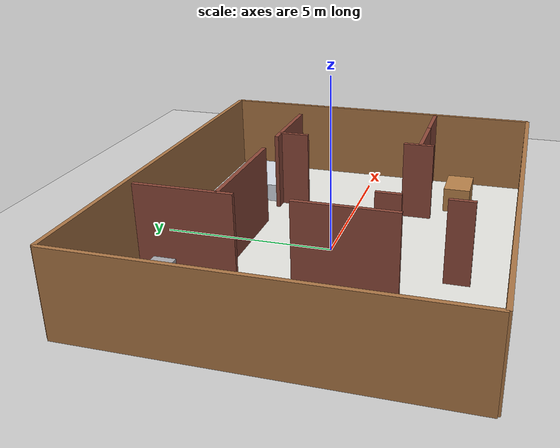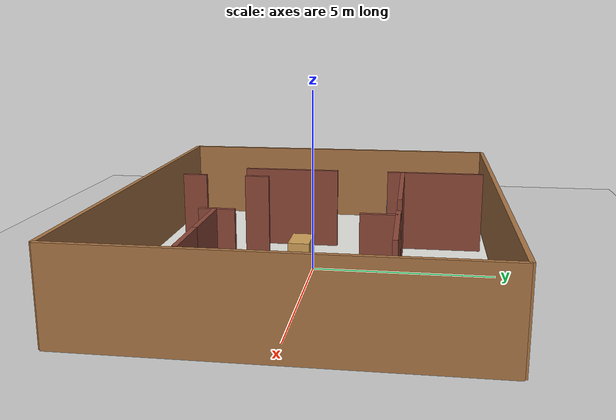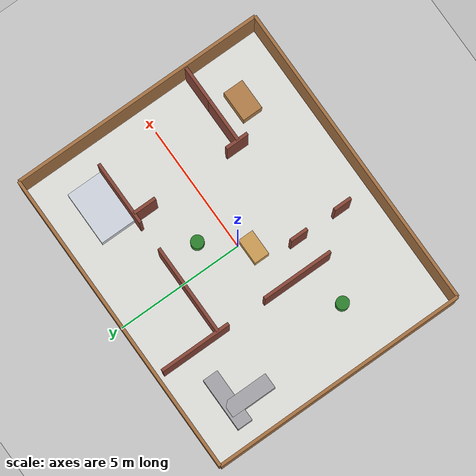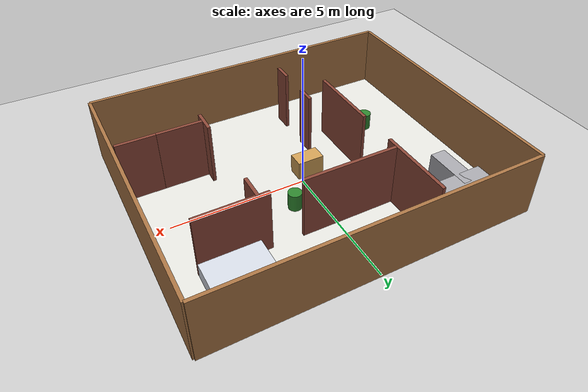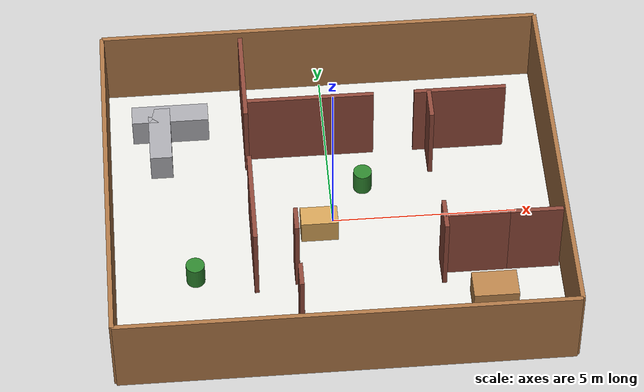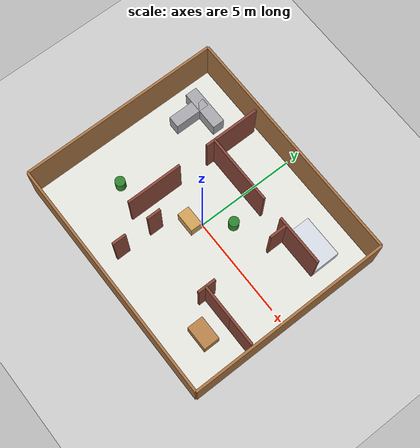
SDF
<?xml version="1.0" ?>
<sdf version="1.6">
  <world name="house_scan_world">
    <gravity>0 0 -9.8</gravity>
    <magnetic_field>6e-06 2.3e-05 -4.2e-05</magnetic_field>
    <atmosphere type="adiabatic"/>

    <include>
      <uri>model://sun</uri>
    </include>

    <include>
      <uri>model://ground_plane</uri>
    </include>

    <scene>
      <ambient>0.75 0.75 0.75 1</ambient>
      <background>0.92 0.94 0.97 1</background>
      <shadows>true</shadows>
    </scene>

    <physics name="default_physics" default="1" type="ode">
      <max_step_size>0.001</max_step_size>
      <real_time_update_rate>1000</real_time_update_rate>
    </physics>

    <gui fullscreen="0">
      <camera name="user_camera">
        <pose>-0.8 -0.6 18 0 1.57 1.57</pose>
        <view_controller>orbit</view_controller>
        <projection_type>perspective</projection_type>
      </camera>
    </gui>

    <model name="house_layout">
      <static>true</static>
      <pose>0 0 0 0 0 0</pose>

      <link name="floor">
        <pose>0 0 0.025 0 0 0</pose>
        <collision name="floor_collision">
          <geometry>
            <box>
              <size>12 10 0.05</size>
            </box>
          </geometry>
        </collision>
        <visual name="floor_visual">
          <geometry>
            <box>
              <size>12 10 0.05</size>
            </box>
          </geometry>
          <material>
            <ambient>0.87 0.87 0.84 1</ambient>
            <diffuse>0.90 0.90 0.88 1</diffuse>
          </material>
        </visual>
      </link>

      <link name="wall_south">
        <pose>0 -5 1.2 0 0 0</pose>
        <collision name="collision">
          <geometry>
            <box><size>12 0.12 2.4</size></box>
          </geometry>
        </collision>
        <visual name="visual">
          <geometry>
            <box><size>12 0.12 2.4</size></box>
          </geometry>
          <material>
            <ambient>0.58 0.38 0.21 1</ambient>
            <diffuse>0.67 0.46 0.27 1</diffuse>
          </material>
        </visual>
      </link>

      <link name="wall_north">
        <pose>0 5 1.2 0 0 0</pose>
        <collision name="collision">
          <geometry>
            <box><size>12 0.12 2.4</size></box>
          </geometry>
        </collision>
        <visual name="visual">
          <geometry>
            <box><size>12 0.12 2.4</size></box>
          </geometry>
          <material>
            <ambient>0.58 0.38 0.21 1</ambient>
            <diffuse>0.67 0.46 0.27 1</diffuse>
          </material>
        </visual>
      </link>

      <link name="wall_west">
        <pose>-6 0 1.2 0 0 0</pose>
        <collision name="collision">
          <geometry>
            <box><size>0.12 10 2.4</size></box>
          </geometry>
        </collision>
        <visual name="visual">
          <geometry>
            <box><size>0.12 10 2.4</size></box>
          </geometry>
          <material>
            <ambient>0.58 0.38 0.21 1</ambient>
            <diffuse>0.67 0.46 0.27 1</diffuse>
          </material>
        </visual>
      </link>

      <link name="wall_east">
        <pose>6 0 1.2 0 0 0</pose>
        <collision name="collision">
          <geometry>
            <box><size>0.12 10 2.4</size></box>
          </geometry>
        </collision>
        <visual name="visual">
          <geometry>
            <box><size>0.12 10 2.4</size></box>
          </geometry>
          <material>
            <ambient>0.58 0.38 0.21 1</ambient>
            <diffuse>0.67 0.46 0.27 1</diffuse>
          </material>
        </visual>
      </link>

      <link name="room_divider_west_top">
        <pose>-2.2 3.35 1.2 0 0 0</pose>
        <collision name="collision">
          <geometry>
            <box><size>0.12 2.8 2.4</size></box>
          </geometry>
        </collision>
        <visual name="visual">
          <geometry>
            <box><size>0.12 2.8 2.4</size></box>
          </geometry>
          <material>
            <ambient>0.44 0.22 0.18 1</ambient>
            <diffuse>0.55 0.28 0.22 1</diffuse>
          </material>
        </visual>
      </link>

      <link name="room_divider_west_bottom">
        <pose>-2.2 -0.95 1.2 0 0 0</pose>
        <collision name="collision">
          <geometry>
            <box><size>0.12 2.8 2.4</size></box>
          </geometry>
        </collision>
        <visual name="visual">
          <geometry>
            <box><size>0.12 2.8 2.4</size></box>
          </geometry>
          <material>
            <ambient>0.44 0.22 0.18 1</ambient>
            <diffuse>0.55 0.28 0.22 1</diffuse>
          </material>
        </visual>
      </link>

      <link name="room_divider_top_left">
        <pose>-0.45 2.4 1.2 0 0 0</pose>
        <collision name="collision">
          <geometry>
            <box><size>3.5 0.12 2.4</size></box>
          </geometry>
        </collision>
        <visual name="visual">
          <geometry>
            <box><size>3.5 0.12 2.4</size></box>
          </geometry>
          <material>
            <ambient>0.44 0.22 0.18 1</ambient>
            <diffuse>0.55 0.28 0.22 1</diffuse>
          </material>
        </visual>
      </link>

      <link name="room_divider_top_right">
        <pose>3.65 2.4 1.2 0 0 0</pose>
        <collision name="collision">
          <geometry>
            <box><size>2.5 0.12 2.4</size></box>
          </geometry>
        </collision>
        <visual name="visual">
          <geometry>
            <box><size>2.5 0.12 2.4</size></box>
          </geometry>
          <material>
            <ambient>0.44 0.22 0.18 1</ambient>
            <diffuse>0.55 0.28 0.22 1</diffuse>
          </material>
        </visual>
      </link>

      <link name="room_divider_east_vertical_top">
        <pose>2.8 1.95 1.2 0 0 0</pose>
        <collision name="collision">
          <geometry>
            <box><size>0.12 0.9 2.4</size></box>
          </geometry>
        </collision>
        <visual name="visual">
          <geometry>
            <box><size>0.12 0.9 2.4</size></box>
          </geometry>
          <material>
            <ambient>0.44 0.22 0.18 1</ambient>
            <diffuse>0.55 0.28 0.22 1</diffuse>
          </material>
        </visual>
      </link>

      <link name="room_divider_east_vertical_bottom">
        <pose>2.8 -1.95 1.2 0 0 0</pose>
        <collision name="collision">
          <geometry>
            <box><size>0.12 0.9 2.4</size></box>
          </geometry>
        </collision>
        <visual name="visual">
          <geometry>
            <box><size>0.12 0.9 2.4</size></box>
          </geometry>
          <material>
            <ambient>0.44 0.22 0.18 1</ambient>
            <diffuse>0.55 0.28 0.22 1</diffuse>
          </material>
        </visual>
      </link>

      <link name="bottom_right_room_top_left">
        <pose>3.65 -2.0 1.2 0 0 0</pose>
        <collision name="collision">
          <geometry>
            <box><size>1.7 0.12 2.4</size></box>
          </geometry>
        </collision>
        <visual name="visual">
          <geometry>
            <box><size>1.7 0.12 2.4</size></box>
          </geometry>
          <material>
            <ambient>0.44 0.22 0.18 1</ambient>
            <diffuse>0.55 0.28 0.22 1</diffuse>
          </material>
        </visual>
      </link>

      <link name="bottom_right_room_top_right">
        <pose>5.2 -2.0 1.2 0 0 0</pose>
        <collision name="collision">
          <geometry>
            <box><size>1.4 0.12 2.4</size></box>
          </geometry>
        </collision>
        <visual name="visual">
          <geometry>
            <box><size>1.4 0.12 2.4</size></box>
          </geometry>
          <material>
            <ambient>0.44 0.22 0.18 1</ambient>
            <diffuse>0.55 0.28 0.22 1</diffuse>
          </material>
        </visual>
      </link>

      <link name="entry_partition_top">
        <pose>-1.1 -3.65 1.2 0 0 0</pose>
        <collision name="collision">
          <geometry>
            <box><size>0.12 0.7 2.4</size></box>
          </geometry>
        </collision>
        <visual name="visual">
          <geometry>
            <box><size>0.12 0.7 2.4</size></box>
          </geometry>
          <material>
            <ambient>0.44 0.22 0.18 1</ambient>
            <diffuse>0.55 0.28 0.22 1</diffuse>
          </material>
        </visual>
      </link>

      <link name="entry_partition_bottom">
        <pose>-1.1 -1.8 1.2 0 0 0</pose>
        <collision name="collision">
          <geometry>
            <box><size>0.12 0.7 2.4</size></box>
          </geometry>
        </collision>
        <visual name="visual">
          <geometry>
            <box><size>0.12 0.7 2.4</size></box>
          </geometry>
          <material>
            <ambient>0.44 0.22 0.18 1</ambient>
            <diffuse>0.55 0.28 0.22 1</diffuse>
          </material>
        </visual>
      </link>

      <link name="table_center">
        <pose>-0.4 -0.4 0.38 0 0 0</pose>
        <collision name="collision">
          <geometry>
            <box><size>1.0 0.6 0.76</size></box>
          </geometry>
        </collision>
        <visual name="visual">
          <geometry>
            <box><size>1.0 0.6 0.76</size></box>
          </geometry>
          <material>
            <ambient>0.72 0.54 0.29 1</ambient>
            <diffuse>0.82 0.63 0.34 1</diffuse>
          </material>
        </visual>
      </link>

      <link name="bedroom_bed">
        <pose>3.85 3.10 0.30 0 0 0</pose>
        <collision name="collision">
          <geometry>
            <box><size>2.1 1.5 0.6</size></box>
          </geometry>
        </collision>
        <visual name="visual">
          <geometry>
            <box><size>2.1 1.5 0.6</size></box>
          </geometry>
          <material>
            <ambient>0.77 0.79 0.83 1</ambient>
            <diffuse>0.84 0.86 0.90 1</diffuse>
          </material>
        </visual>
      </link>

      <link name="kitchen_counter_north">
        <pose>-4.25 3.45 0.45 0 0 0</pose>
        <collision name="collision">
          <geometry>
            <box><size>2.1 0.6 0.9</size></box>
          </geometry>
        </collision>
        <visual name="visual">
          <geometry>
            <box><size>2.1 0.6 0.9</size></box>
          </geometry>
          <material>
            <ambient>0.55 0.55 0.56 1</ambient>
            <diffuse>0.66 0.66 0.68 1</diffuse>
          </material>
        </visual>
      </link>

      <link name="kitchen_counter_side">
        <pose>-4.55 2.75 0.45 0 0 1.57</pose>
        <collision name="collision">
          <geometry>
            <box><size>1.8 0.6 0.9</size></box>
          </geometry>
        </collision>
        <visual name="visual">
          <geometry>
            <box><size>1.8 0.6 0.9</size></box>
          </geometry>
          <material>
            <ambient>0.55 0.55 0.56 1</ambient>
            <diffuse>0.66 0.66 0.68 1</diffuse>
          </material>
        </visual>
      </link>

      <link name="bottom_right_table">
        <pose>4.05 -3.10 0.4 0 0 0</pose>
        <collision name="collision">
          <geometry>
            <box><size>1.2 0.8 0.8</size></box>
          </geometry>
        </collision>
        <visual name="visual">
          <geometry>
            <box><size>1.2 0.8 0.8</size></box>
          </geometry>
          <material>
            <ambient>0.60 0.43 0.24 1</ambient>
            <diffuse>0.72 0.51 0.29 1</diffuse>
          </material>
        </visual>
      </link>

      <link name="plant_top_hall">
        <pose>0.9 1.1 0.35 0 0 0</pose>
        <collision name="collision">
          <geometry>
            <cylinder><radius>0.25</radius><length>0.7</length></cylinder>
          </geometry>
        </collision>
        <visual name="visual">
          <geometry>
            <cylinder><radius>0.25</radius><length>0.7</length></cylinder>
          </geometry>
          <material>
            <ambient>0.14 0.38 0.14 1</ambient>
            <diffuse>0.18 0.52 0.18 1</diffuse>
          </material>
        </visual>
      </link>

      <link name="plant_left_hall">
        <pose>-3.8 -1.8 0.35 0 0 0</pose>
        <collision name="collision">
          <geometry>
            <cylinder><radius>0.25</radius><length>0.7</length></cylinder>
          </geometry>
        </collision>
        <visual name="visual">
          <geometry>
            <cylinder><radius>0.25</radius><length>0.7</length></cylinder>
          </geometry>
          <material>
            <ambient>0.14 0.38 0.14 1</ambient>
            <diffuse>0.18 0.52 0.18 1</diffuse>
          </material>
        </visual>
      </link>
    </model>
  </world>
</sdf>
